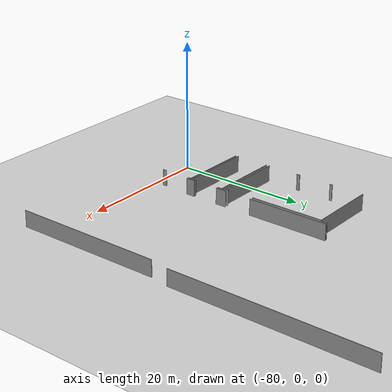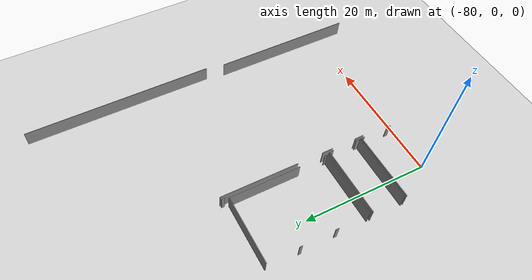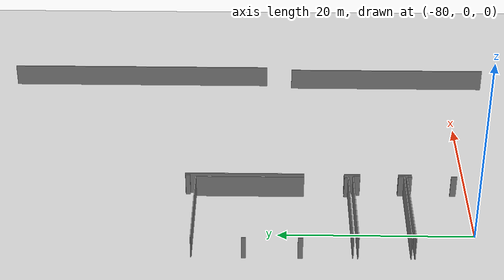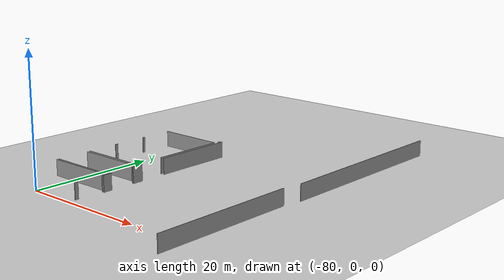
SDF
<sdf version="1.6">
 <world name="default">
  <model name="ground_plane">
   <static>1</static>
   <link name="link">
    <collision name="collision">
     <geometry><plane><normal>0 0 1</normal><size>100 100</size></plane></geometry>
     <surface><friction><ode><mu>100</mu><mu2>50</mu2></ode></friction></surface>
    </collision>
    <visual name="visual">
     <cast_shadows>0</cast_shadows>
     <geometry><plane><normal>0 0 1</normal><size>100 100</size></plane></geometry>
     <material>
      <script><uri>file://media/materials/scripts/gazebo.material</uri><name>Gazebo/Grey</name></script>
     </material>
    </visual>
   </link>
  </model>
  <model name="0510045904_A_40_1_102">
   <static>1</static>
   <link name="Wall_6">
    <collision name="Wall_6_Collision">
     <geometry><box><size>1.41328221209 0.1 2.5</size></box></geometry>
     <pose>0.706641106047 0 1.25 0 0 0</pose>
    </collision>
    <visual name="Wall_6_Visual">
     <pose>0.706641106047 0 1.25 0 0 0</pose>
     <geometry><box><size>1.41328221209 0.1 2.5</size></box></geometry>
     <material>
      <script><uri>file://media/materials/scripts/gazebo.material</uri><name>Gazebo/Grey</name></script>
      <ambient>1 1 1 1</ambient>
     </material>
    </visual>
    <pose>11.7224218264 -56.5434763289 0 0 0 1.57079632679</pose>
   </link>
   <link name="Wall_7">
    <collision name="Wall_7_Collision">
     <geometry><box><size>1.71290007237 0.1 2.5</size></box></geometry>
     <pose>0.856450036183 0 1.25 0 0 0</pose>
    </collision>
    <visual name="Wall_7_Visual">
     <pose>0.856450036183 0 1.25 0 0 0</pose>
     <geometry><box><size>1.71290007237 0.1 2.5</size></box></geometry>
     <material>
      <script><uri>file://media/materials/scripts/gazebo.material</uri><name>Gazebo/Grey</name></script>
      <ambient>1 1 1 1</ambient>
     </material>
    </visual>
    <pose>11.7224218264 -51.1582261607 0 0 0 1.57079632679</pose>
   </link>
   <link name="Wall_8">
    <collision name="Wall_8_Collision">
     <geometry><box><size>12.4971117346 0.1 2.5</size></box></geometry>
     <pose>6.2485558673 0 1.25 0 0 0</pose>
    </collision>
    <visual name="Wall_8_Visual">
     <pose>6.2485558673 0 1.25 0 0 0</pose>
     <geometry><box><size>12.4971117346 0.1 2.5</size></box></geometry>
     <material>
      <script><uri>file://media/materials/scripts/gazebo.material</uri><name>Gazebo/Grey</name></script>
      <ambient>1 1 1 1</ambient>
     </material>
    </visual>
    <pose>11.7224218264 -45.2608325822 0 0 0 1.57079632679</pose>
   </link>
   <link name="Wall_14">
    <collision name="Wall_14_Collision">
     <geometry><box><size>22.5977884139 0.1 2.5</size></box></geometry>
     <pose>11.298894207 0 1.25 0 0 0</pose>
    </collision>
    <visual name="Wall_14_Visual">
     <pose>11.298894207 0 1.25 0 0 0</pose>
     <geometry><box><size>22.5977884139 0.1 2.5</size></box></geometry>
     <material>
      <script><uri>file://media/materials/scripts/gazebo.material</uri><name>Gazebo/Grey</name></script>
      <ambient>1 1 1 1</ambient>
     </material>
    </visual>
    <pose>33.7011692714 -44.1971891782 0 0 0 -1.57079632679</pose>
   </link>
   <link name="Wall_27">
    <collision name="Wall_27_Collision">
     <geometry><box><size>0.484212931812 0.1 2.5</size></box></geometry>
     <pose>0.242106465906 0 1.25 0 0 0</pose>
    </collision>
    <visual name="Wall_27_Visual">
     <pose>0.242106465906 0 1.25 0 0 0</pose>
     <geometry><box><size>0.484212931812 0.1 2.5</size></box></geometry>
     <material>
      <script><uri>file://media/materials/scripts/gazebo.material</uri><name>Gazebo/Grey</name></script>
      <ambient>1 1 1 1</ambient>
     </material>
    </visual>
    <pose>11.3859865172 -33.2951616794 0 0 0 1.57079632679</pose>
   </link>
   <link name="Wall_31">
    <collision name="Wall_31_Collision">
     <geometry><box><size>10.6516688461 0.1 2.5</size></box></geometry>
     <pose>5.32583442305 0 1.25 0 0 0</pose>
    </collision>
    <visual name="Wall_31_Visual">
     <pose>5.32583442305 0 1.25 0 0 0</pose>
     <geometry><box><size>10.6516688461 0.1 2.5</size></box></geometry>
     <material>
      <script><uri>file://media/materials/scripts/gazebo.material</uri><name>Gazebo/Grey</name></script>
      <ambient>1 1 1 1</ambient>
     </material>
    </visual>
    <pose>11.2024070994 -49.9069407239 0 0 0 3.14159265359</pose>
   </link>
   <link name="Wall_32">
    <collision name="Wall_32_Collision">
     <geometry><box><size>0.500971218911 0.1 2.5</size></box></geometry>
     <pose>0.250485609456 0 1.25 0 0 0</pose>
    </collision>
    <visual name="Wall_32_Visual">
     <pose>0.250485609456 0 1.25 0 0 0</pose>
     <geometry><box><size>0.500971218911 0.1 2.5</size></box></geometry>
     <material>
      <script><uri>file://media/materials/scripts/gazebo.material</uri><name>Gazebo/Grey</name></script>
      <ambient>1 1 1 1</ambient>
     </material>
    </visual>
    <pose>0.550738253329 -44.9485190499 0 0 0 1.57079632679</pose>
   </link>
   <link name="Wall_33">
    <collision name="Wall_33_Collision">
     <geometry><box><size>0.434191983953 0.1 2.5</size></box></geometry>
     <pose>0.217095991976 0 1.25 0 0 0</pose>
    </collision>
    <visual name="Wall_33_Visual">
     <pose>0.217095991976 0 1.25 0 0 0</pose>
     <geometry><box><size>0.434191983953 0.1 2.5</size></box></geometry>
     <material>
      <script><uri>file://media/materials/scripts/gazebo.material</uri><name>Gazebo/Grey</name></script>
      <ambient>1 1 1 1</ambient>
     </material>
    </visual>
    <pose>0.550738253329 -39.3055467391 0 0 0 1.57079632679</pose>
   </link>
   <link name="Wall_34">
    <collision name="Wall_34_Collision">
     <geometry><box><size>10.5841278708 0.1 2.5</size></box></geometry>
     <pose>5.2920639354 0 1.25 0 0 0</pose>
    </collision>
    <visual name="Wall_34_Visual">
     <pose>5.2920639354 0 1.25 0 0 0</pose>
     <geometry><box><size>10.5841278708 0.1 2.5</size></box></geometry>
     <material>
      <script><uri>file://media/materials/scripts/gazebo.material</uri><name>Gazebo/Grey</name></script>
      <ambient>1 1 1 1</ambient>
     </material>
    </visual>
    <pose>0.550738253329 -33.8855104295 0 0 0 0.0</pose>
   </link>
   <link name="Wall_35">
    <collision name="Wall_35_Collision">
     <geometry><box><size>11.3598334328 0.1 2.5</size></box></geometry>
     <pose>5.67991671639 0 1.25 0 0 0</pose>
    </collision>
    <visual name="Wall_35_Visual">
     <pose>5.67991671639 0 1.25 0 0 0</pose>
     <geometry><box><size>11.3598334328 0.1 2.5</size></box></geometry>
     <material>
      <script><uri>file://media/materials/scripts/gazebo.material</uri><name>Gazebo/Grey</name></script>
      <ambient>1 1 1 1</ambient>
     </material>
    </visual>
    <pose>11.1348661241 -33.8855104295 0 0 0 -1.57079632679</pose>
   </link>
   <link name="Wall_36">
    <collision name="Wall_36_Collision">
     <geometry><box><size>0.451711725919 0.1 2.5</size></box></geometry>
     <pose>0.225855862959 0 1.25 0 0 0</pose>
    </collision>
    <visual name="Wall_36_Visual">
     <pose>0.225855862959 0 1.25 0 0 0</pose>
     <geometry><box><size>0.451711725919 0.1 2.5</size></box></geometry>
     <material>
      <script><uri>file://media/materials/scripts/gazebo.material</uri><name>Gazebo/Grey</name></script>
      <ambient>1 1 1 1</ambient>
     </material>
    </visual>
    <pose>11.1348661241 -49.4603069814 0 0 0 -1.42071120493</pose>
   </link>
   <link name="Wall_37">
    <collision name="Wall_37_Collision">
     <geometry><box><size>0.614470526997 0.1 2.5</size></box></geometry>
     <pose>0.307235263499 0 1.25 0 0 0</pose>
    </collision>
    <visual name="Wall_37_Visual">
     <pose>0.307235263499 0 1.25 0 0 0</pose>
     <geometry><box><size>0.614470526997 0.1 2.5</size></box></geometry>
     <material>
      <script><uri>file://media/materials/scripts/gazebo.material</uri><name>Gazebo/Grey</name></script>
      <ambient>1 1 1 1</ambient>
     </material>
    </visual>
    <pose>11.4093465538 -55.7553290083 0 0 0 1.57079632679</pose>
   </link>
   <link name="Wall_38">
    <collision name="Wall_38_Collision">
     <geometry><box><size>0.706387192606 0.1 2.5</size></box></geometry>
     <pose>0.353193596303 0 1.25 0 0 0</pose>
    </collision>
    <visual name="Wall_38_Visual">
     <pose>0.353193596303 0 1.25 0 0 0</pose>
     <geometry><box><size>0.706387192606 0.1 2.5</size></box></geometry>
     <material>
      <script><uri>file://media/materials/scripts/gazebo.material</uri><name>Gazebo/Grey</name></script>
      <ambient>1 1 1 1</ambient>
     </material>
    </visual>
    <pose>11.4093465538 -51.111760001 0 0 0 1.57079632679</pose>
   </link>
   <link name="Wall_39">
    <collision name="Wall_39_Collision">
     <geometry><box><size>10.8888239999 0.1 2.5</size></box></geometry>
     <pose>5.44441199995 0 1.25 0 0 0</pose>
    </collision>
    <visual name="Wall_39_Visual">
     <pose>5.44441199995 0 1.25 0 0 0</pose>
     <geometry><box><size>10.8888239999 0.1 2.5</size></box></geometry>
     <material>
      <script><uri>file://media/materials/scripts/gazebo.material</uri><name>Gazebo/Grey</name></script>
      <ambient>1 1 1 1</ambient>
     </material>
    </visual>
    <pose>11.4093465538 -50.4053728084 0 0 0 3.14159265359</pose>
   </link>
   <link name="Wall_40">
    <collision name="Wall_40_Collision">
     <geometry><box><size>10.8892119446 0.1 2.5</size></box></geometry>
     <pose>5.44460597229 0 1.25 0 0 0</pose>
    </collision>
    <visual name="Wall_40_Visual">
     <pose>5.44460597229 0 1.25 0 0 0</pose>
     <geometry><box><size>10.8892119446 0.1 2.5</size></box></geometry>
     <material>
      <script><uri>file://media/materials/scripts/gazebo.material</uri><name>Gazebo/Grey</name></script>
      <ambient>1 1 1 1</ambient>
     </material>
    </visual>
    <pose>0.520522553861 -55.6634123427 0 0 0 -0.00844117624387</pose>
   </link>
   <link name="Wall_42">
    <collision name="Wall_42_Collision">
     <geometry><box><size>10.8423578402 0.1 2.5</size></box></geometry>
     <pose>5.42117892011 0 1.25 0 0 0</pose>
    </collision>
    <visual name="Wall_42_Visual">
     <pose>5.42117892011 0 1.25 0 0 0</pose>
     <geometry><box><size>10.8423578402 0.1 2.5</size></box></geometry>
     <material>
      <script><uri>file://media/materials/scripts/gazebo.material</uri><name>Gazebo/Grey</name></script>
      <ambient>1 1 1 1</ambient>
     </material>
    </visual>
    <pose>0.542105196339 -56.0452981579 0 0 0 0.0</pose>
   </link>
   <link name="Wall_43">
    <collision name="Wall_43_Collision">
     <geometry><box><size>0.505795574289 0.1 2.5</size></box></geometry>
     <pose>0.252897787144 0 1.25 0 0 0</pose>
    </collision>
    <visual name="Wall_43_Visual">
     <pose>0.252897787144 0 1.25 0 0 0</pose>
     <geometry><box><size>0.505795574289 0.1 2.5</size></box></geometry>
     <material>
      <script><uri>file://media/materials/scripts/gazebo.material</uri><name>Gazebo/Grey</name></script>
      <ambient>1 1 1 1</ambient>
     </material>
    </visual>
    <pose>11.3844630366 -56.0452981579 0 0 0 -1.57079632679</pose>
   </link>
   <link name="Wall_44">
    <collision name="Wall_44_Collision">
     <geometry><box><size>0.625122515433 0.1 2.5</size></box></geometry>
     <pose>0.312561257717 0 1.25 0 0 0</pose>
    </collision>
    <visual name="Wall_44_Visual">
     <pose>0.312561257717 0 1.25 0 0 0</pose>
     <geometry><box><size>0.625122515433 0.1 2.5</size></box></geometry>
     <material>
      <script><uri>file://media/materials/scripts/gazebo.material</uri><name>Gazebo/Grey</name></script>
      <ambient>1 1 1 1</ambient>
     </material>
    </visual>
    <pose>11.3844630366 -60.6418931786 0 0 0 -1.5309799826</pose>
   </link>
   <link name="Wall_68">
    <collision name="Wall_68_Collision">
     <geometry><box><size>30.052687039 0.1 2.5</size></box></geometry>
     <pose>15.0263435195 0 1.25 0 0 0</pose>
    </collision>
    <visual name="Wall_68_Visual">
     <pose>15.0263435195 0 1.25 0 0 0</pose>
     <geometry><box><size>30.052687039 0.1 2.5</size></box></geometry>
     <material>
      <script><uri>file://media/materials/scripts/gazebo.material</uri><name>Gazebo/Grey</name></script>
      <ambient>1 1 1 1</ambient>
     </material>
    </visual>
    <pose>34.2183909505 -41.2842941841 0 0 0 1.57079632679</pose>
   </link>
   <pose>-84.3 62.4479902751 0 0 0 0</pose>
  </model>
 </world>
</sdf>
